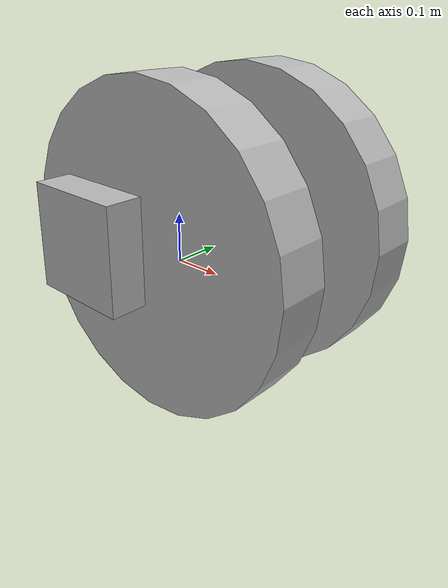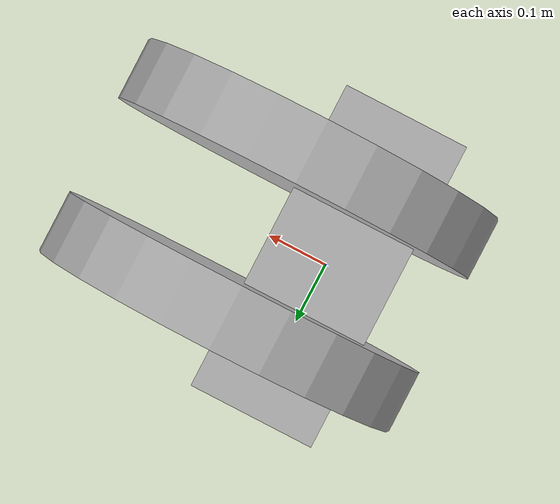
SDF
<?xml version='1.0'?>
<sdf version='1.4'>
  <model name="my_robot">
    <link name='my_robot'>
       <pose>0 0 .1 0 0 0</pose>

       <collision name='collision'>
         <geometry>
           <box>
             <size>.2 .5 .2</size>
           </box>
         </geometry>
       </collision>

       <visual name='visual'>
         <geometry>
           <box>
             <size>.2 .5 .2</size>
           </box>
         </geometry>
       </visual>
     </link>

     <collision name='caster_collision'>
       <pose>-0.15 0 -0.05 0 0 0</pose>
       <geometry>
           <sphere>
           <radius>.05</radius>
         </sphere>
       </geometry>

       <surface>
         <friction>
           <ode>
             <mu>0</mu>
             <mu2>0</mu2>
             <slip1>1.0</slip1>
             <slip2>1.0</slip2>
           </ode>
         </friction>
       </surface>
     </collision>

     <visual name='caster_visual'>
       <pose>-0.15 0 -0.05 0 0 0</pose>
       <geometry>
         <sphere>
           <radius>.05</radius>
         </sphere>
       </geometry>
     </visual>

     <link name="left_wheel">
       <pose>0.1 0.13 0.1 0 1.5707 1.5707</pose>
       <collision name="collision">
         <geometry>
           <cylinder>
             <radius>0.3</radius>
             <length>.1</length>
           </cylinder>
         </geometry>
       </collision>
       <visual name="visual">
         <geometry>
           <cylinder>
             <radius>0.3</radius>
             <length>.1</length>
           </cylinder>
         </geometry>
       </visual>
     </link>

     <link name="right_wheel">
       <pose>0.1 -0.13 0.1 0 1.5707 1.5707</pose>
       <collision name="collision">
         <geometry>
           <cylinder>
             <radius>0.3</radius>
             <length>.1</length>
           </cylinder>
         </geometry>
       </collision>
       <visual name="visual">
         <geometry>
           <cylinder>
             <radius>0.3</radius>
             <length>.1</length>
           </cylinder>
         </geometry>
       </visual>
     </link>

     <joint type="revolute" name="left_wheel_hinge">
       <pose>0 0 -0.03 0 0 0</pose>
       <child>left_wheel</child>
       <parent>my_robot</parent>
       <axis>
         <xyz>0 1 0</xyz>
       </axis>
     </joint>

     <joint type="revolute" name="right_wheel_hinge">
       <pose>0 0 0.03 0 0 0</pose>
       <child>right_wheel</child>
       <parent>my_robot</parent>
       <axis>
         <xyz>0 1 0</xyz>
       </axis>
     </joint>

  </model>
</sdf>
